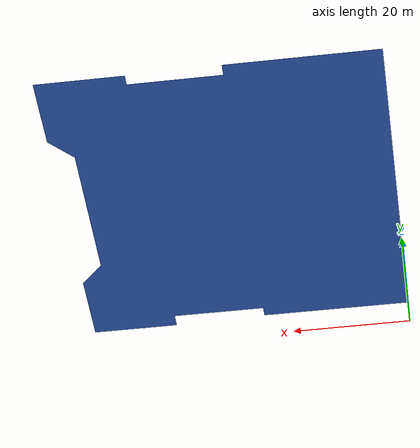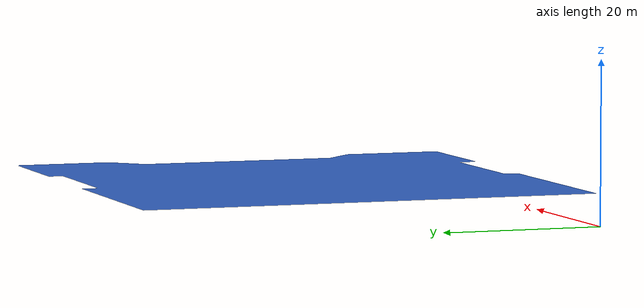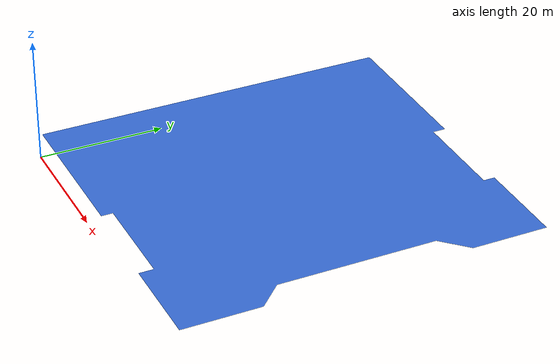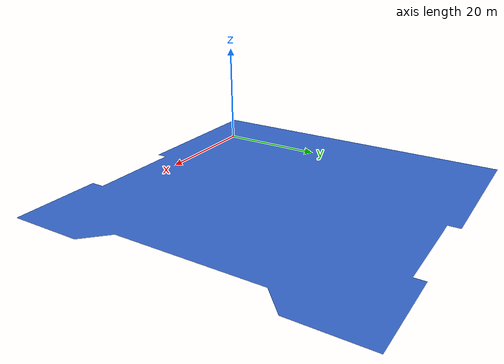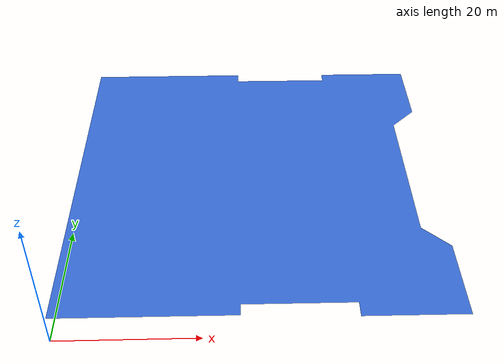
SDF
<?xml version='1.0'?>
<sdf version='1.6'>
  <model name='museum_sealing'>
    <link name='link_36'>
      <pose frame=''>0 0.5 0 0 -0 0</pose>
       <visual name='visual'>
        <pose frame=''>0 0 0 0 -0 0</pose>
        <geometry>
          <mesh>
            <uri>model://museum_sealing/meshes/museum_sealing.dae</uri>
            <scale>1 1 1</scale>
          </mesh>
        </geometry>

        <cast_shadows>1</cast_shadows>
        <transparency>0</transparency>
      </visual>

      <collision name='collision'>
        <laser_retro>0</laser_retro>
        <max_contacts>10</max_contacts>
        <pose frame=''>0 0 0 0 -0 0</pose>
        <geometry>
          <mesh>
            <uri>model://museum_sealing/meshes/museum_sealing.dae</uri>
            <scale>1 1 1</scale>
          </mesh>
        </geometry>
       </collision>

    </link>
    <static>1</static>
    <allow_auto_disable>1</allow_auto_disable>
  </model>
</sdf>
